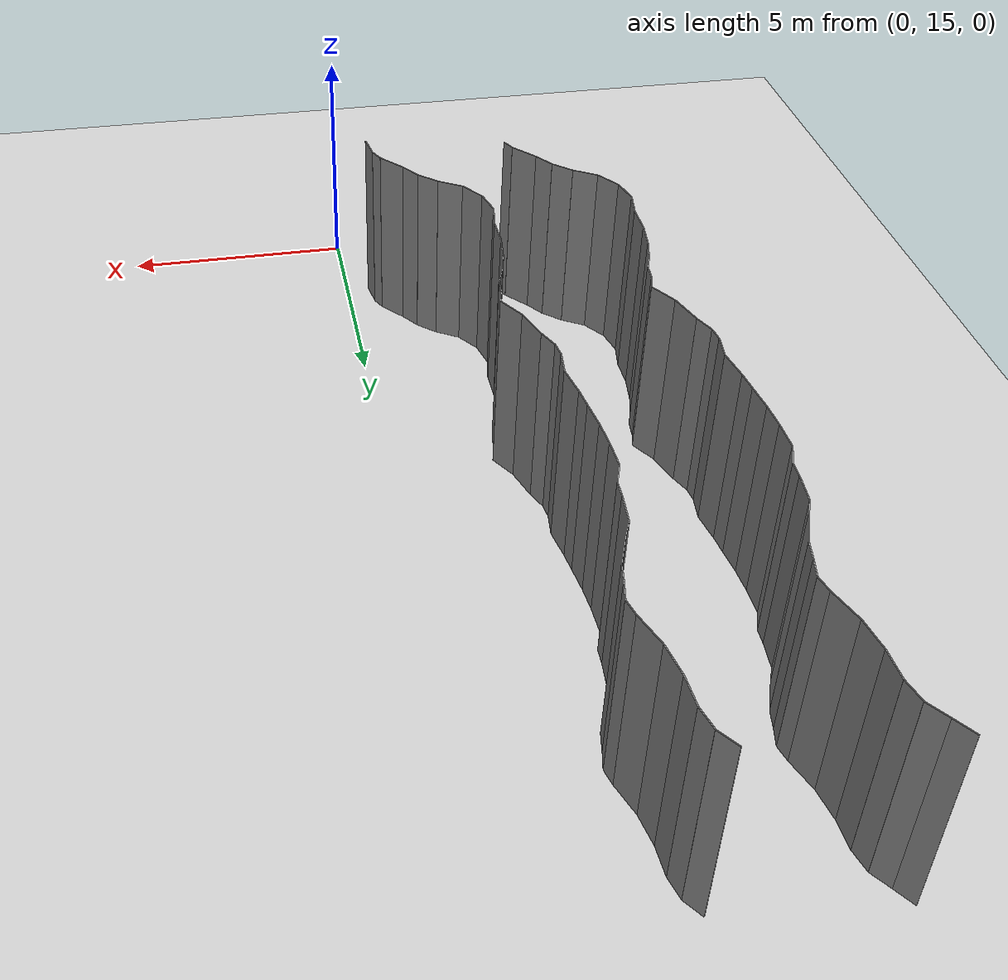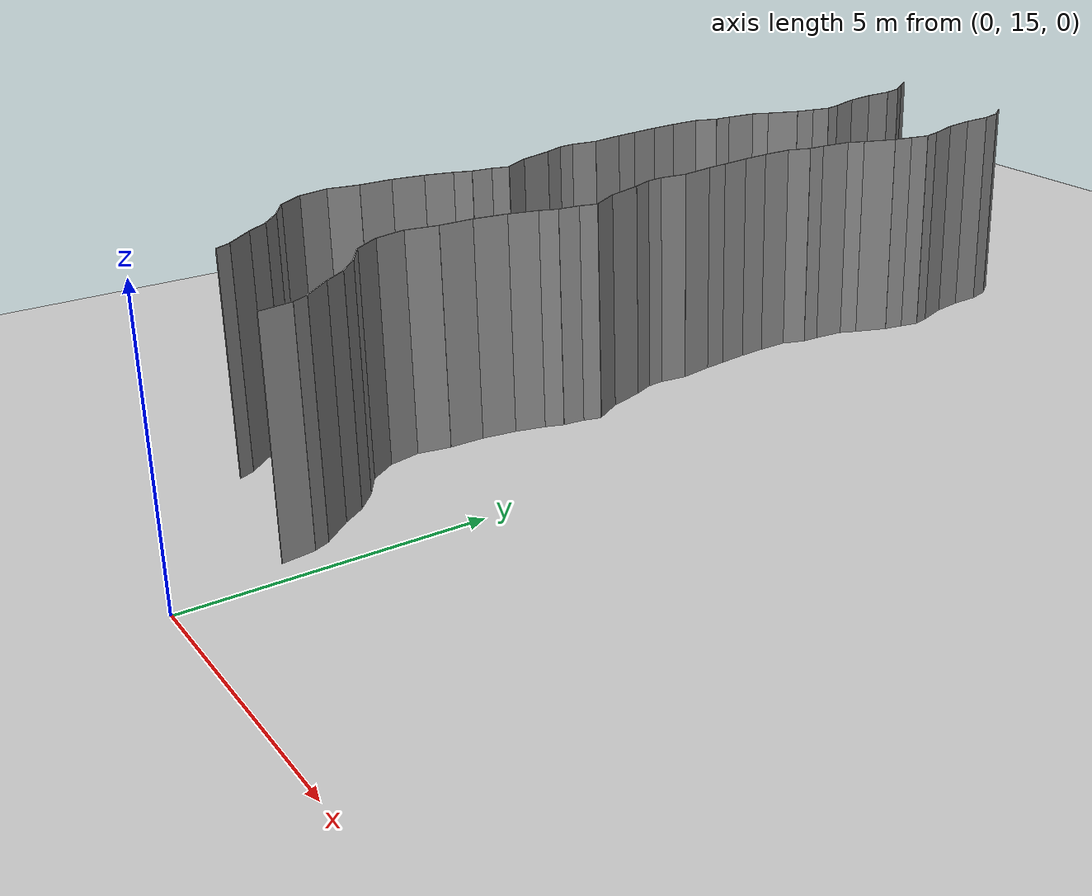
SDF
<sdf version="1.6">
 <world name="default">
  <model name="ground_plane">
   <static>1</static>
   <link name="link">
    <collision name="collision">
     <geometry><plane><normal>0 0 1</normal><size>200 200</size></plane></geometry>
     <surface><friction><ode><mu>100</mu><mu2>50</mu2></ode></friction></surface>
    </collision>
    <visual name="visual">
     <cast_shadows>0</cast_shadows>
     <geometry><plane><normal>0 0 1</normal><size>200 200</size></plane></geometry>
     <material>
      <script><uri>file://media/materials/scripts/gazebo.material</uri><name>Gazebo/Grey</name></script>
     </material>
    </visual>
   </link>
   <pose>0 100 0 0 -0 0</pose>
  </model>
  <model name="wall_73">
   <static>1</static>
   <pose>-0.555920707397 17.1305444143 2 0 0 0.146298872248</pose>
   <link name="link">
    <collision name="collision"><geometry><box><size>0.02 0.571256150958 4</size></box></geometry></collision>
    <visual name="visual">
     <material>
      <script><name>Gazebo/Grey</name><uri>file://media/materials/scripts/gazebo.material</uri></script>
     </material>
     <geometry><box><size>0.02 0.571256150958 4</size></box></geometry>
    </visual>
   </link>
  </model>
  <model name="wall_74">
   <static>1</static>
   <pose>-3.66425128231 17.5491208052 2 0 0 0.455927642203</pose>
   <link name="link">
    <collision name="collision"><geometry><box><size>0.02 0.302943958457 4</size></box></geometry></collision>
    <visual name="visual">
     <material>
      <script><name>Gazebo/Grey</name><uri>file://media/materials/scripts/gazebo.material</uri></script>
     </material>
     <geometry><box><size>0.02 0.302943958457 4</size></box></geometry>
    </visual>
   </link>
  </model>
  <model name="wall_75">
   <static>1</static>
   <pose>-0.664251282315 17.5491208052 2 0 0 0.455927642203</pose>
   <link name="link">
    <collision name="collision"><geometry><box><size>0.02 0.302943958457 4</size></box></geometry></collision>
    <visual name="visual">
     <material>
      <script><name>Gazebo/Grey</name><uri>file://media/materials/scripts/gazebo.material</uri></script>
     </material>
     <geometry><box><size>0.02 0.302943958457 4</size></box></geometry>
    </visual>
   </link>
  </model>
  <model name="wall_76">
   <static>1</static>
   <pose>-3.94526130173 17.932122336 2 0 0 0.714666645023</pose>
   <link name="link">
    <collision name="collision"><geometry><box><size>0.02 0.65403977165 4</size></box></geometry></collision>
    <visual name="visual">
     <material>
      <script><name>Gazebo/Grey</name><uri>file://media/materials/scripts/gazebo.material</uri></script>
     </material>
     <geometry><box><size>0.02 0.65403977165 4</size></box></geometry>
    </visual>
   </link>
  </model>
  <model name="wall_77">
   <static>1</static>
   <pose>-0.945261301727 17.932122336 2 0 0 0.714666645023</pose>
   <link name="link">
    <collision name="collision"><geometry><box><size>0.02 0.65403977165 4</size></box></geometry></collision>
    <visual name="visual">
     <material>
      <script><name>Gazebo/Grey</name><uri>file://media/materials/scripts/gazebo.material</uri></script>
     </material>
     <geometry><box><size>0.02 0.65403977165 4</size></box></geometry>
    </visual>
   </link>
  </model>
  <model name="wall_78">
   <static>1</static>
   <pose>-4.29549473867 18.3744088981 2 0 0 0.608028593425</pose>
   <link name="link">
    <collision name="collision"><geometry><box><size>0.02 0.475853708182 4</size></box></geometry></collision>
    <visual name="visual">
     <material>
      <script><name>Gazebo/Grey</name><uri>file://media/materials/scripts/gazebo.material</uri></script>
     </material>
     <geometry><box><size>0.02 0.475853708182 4</size></box></geometry>
    </visual>
   </link>
  </model>
  <model name="wall_79">
   <static>1</static>
   <pose>-1.29549473867 18.3744088981 2 0 0 0.608028593425</pose>
   <link name="link">
    <collision name="collision"><geometry><box><size>0.02 0.475853708182 4</size></box></geometry></collision>
    <visual name="visual">
     <material>
      <script><name>Gazebo/Grey</name><uri>file://media/materials/scripts/gazebo.material</uri></script>
     </material>
     <geometry><box><size>0.02 0.475853708182 4</size></box></geometry>
    </visual>
   </link>
  </model>
  <model name="wall_80">
   <static>1</static>
   <pose>-4.62259579858 18.7411833052 2 0 0 0.839650843861</pose>
   <link name="link">
    <collision name="collision"><geometry><box><size>0.02 0.513655704942 4</size></box></geometry></collision>
    <visual name="visual">
     <material>
      <script><name>Gazebo/Grey</name><uri>file://media/materials/scripts/gazebo.material</uri></script>
     </material>
     <geometry><box><size>0.02 0.513655704942 4</size></box></geometry>
    </visual>
   </link>
  </model>
  <model name="wall_81">
   <static>1</static>
   <pose>-1.62259579858 18.7411833052 2 0 0 0.839650843861</pose>
   <link name="link">
    <collision name="collision"><geometry><box><size>0.02 0.513655704942 4</size></box></geometry></collision>
    <visual name="visual">
     <material>
      <script><name>Gazebo/Grey</name><uri>file://media/materials/scripts/gazebo.material</uri></script>
     </material>
     <geometry><box><size>0.02 0.513655704942 4</size></box></geometry>
    </visual>
   </link>
  </model>
  <model name="wall_82">
   <static>1</static>
   <pose>-5.0556196747 19.0595482399 2 0 0 1.02500677904</pose>
   <link name="link">
    <collision name="collision"><geometry><box><size>0.02 0.565891277161 4</size></box></geometry></collision>
    <visual name="visual">
     <material>
      <script><name>Gazebo/Grey</name><uri>file://media/materials/scripts/gazebo.material</uri></script>
     </material>
     <geometry><box><size>0.02 0.565891277161 4</size></box></geometry>
    </visual>
   </link>
  </model>
  <model name="wall_83">
   <static>1</static>
   <pose>-2.0556196747 19.0595482399 2 0 0 1.02500677904</pose>
   <link name="link">
    <collision name="collision"><geometry><box><size>0.02 0.565891277161 4</size></box></geometry></collision>
    <visual name="visual">
     <material>
      <script><name>Gazebo/Grey</name><uri>file://media/materials/scripts/gazebo.material</uri></script>
     </material>
     <geometry><box><size>0.02 0.565891277161 4</size></box></geometry>
    </visual>
   </link>
  </model>
  <model name="wall_84">
   <static>1</static>
   <pose>-5.46337011619 19.4442779113 2 0 0 0.609069469858</pose>
   <link name="link">
    <collision name="collision"><geometry><box><size>0.02 0.580005199107 4</size></box></geometry></collision>
    <visual name="visual">
     <material>
      <script><name>Gazebo/Grey</name><uri>file://media/materials/scripts/gazebo.material</uri></script>
     </material>
     <geometry><box><size>0.02 0.580005199107 4</size></box></geometry>
    </visual>
   </link>
  </model>
  <model name="wall_85">
   <static>1</static>
   <pose>-2.46337011619 19.4442779113 2 0 0 0.609069469858</pose>
   <link name="link">
    <collision name="collision"><geometry><box><size>0.02 0.580005199107 4</size></box></geometry></collision>
    <visual name="visual">
     <material>
      <script><name>Gazebo/Grey</name><uri>file://media/materials/scripts/gazebo.material</uri></script>
     </material>
     <geometry><box><size>0.02 0.580005199107 4</size></box></geometry>
    </visual>
   </link>
  </model>
  <model name="wall_86">
   <static>1</static>
   <pose>-5.69353716844 19.963614784 2 0 0 0.224429035056</pose>
   <link name="link">
    <collision name="collision"><geometry><box><size>0.02 0.577446237086 4</size></box></geometry></collision>
    <visual name="visual">
     <material>
      <script><name>Gazebo/Grey</name><uri>file://media/materials/scripts/gazebo.material</uri></script>
     </material>
     <geometry><box><size>0.02 0.577446237086 4</size></box></geometry>
    </visual>
   </link>
  </model>
  <model name="wall_87">
   <static>1</static>
   <pose>-2.69353716844 19.963614784 2 0 0 0.224429035056</pose>
   <link name="link">
    <collision name="collision"><geometry><box><size>0.02 0.577446237086 4</size></box></geometry></collision>
    <visual name="visual">
     <material>
      <script><name>Gazebo/Grey</name><uri>file://media/materials/scripts/gazebo.material</uri></script>
     </material>
     <geometry><box><size>0.02 0.577446237086 4</size></box></geometry>
    </visual>
   </link>
  </model>
  <model name="wall_88">
   <static>1</static>
   <pose>-5.70666971056 20.5378811278 2 0 0 -0.172866234025</pose>
   <link name="link">
    <collision name="collision"><geometry><box><size>0.02 0.59442749651 4</size></box></geometry></collision>
    <visual name="visual">
     <material>
      <script><name>Gazebo/Grey</name><uri>file://media/materials/scripts/gazebo.material</uri></script>
     </material>
     <geometry><box><size>0.02 0.59442749651 4</size></box></geometry>
    </visual>
   </link>
  </model>
  <model name="wall_89">
   <static>1</static>
   <pose>-2.70666971056 20.5378811278 2 0 0 -0.172866234025</pose>
   <link name="link">
    <collision name="collision"><geometry><box><size>0.02 0.59442749651 4</size></box></geometry></collision>
    <visual name="visual">
     <material>
      <script><name>Gazebo/Grey</name><uri>file://media/materials/scripts/gazebo.material</uri></script>
     </material>
     <geometry><box><size>0.02 0.59442749651 4</size></box></geometry>
    </visual>
   </link>
  </model>
  <model name="wall_90">
   <static>1</static>
   <pose>-5.65540623007 21.145656677 2 0 0 -0.000446881931644</pose>
   <link name="link">
    <collision name="collision"><geometry><box><size>0.02 0.629983129248 4</size></box></geometry></collision>
    <visual name="visual">
     <material>
      <script><name>Gazebo/Grey</name><uri>file://media/materials/scripts/gazebo.material</uri></script>
     </material>
     <geometry><box><size>0.02 0.629983129248 4</size></box></geometry>
    </visual>
   </link>
  </model>
  <model name="wall_91">
   <static>1</static>
   <pose>-2.65540623007 21.145656677 2 0 0 -0.000446881931644</pose>
   <link name="link">
    <collision name="collision"><geometry><box><size>0.02 0.629983129248 4</size></box></geometry></collision>
    <visual name="visual">
     <material>
      <script><name>Gazebo/Grey</name><uri>file://media/materials/scripts/gazebo.material</uri></script>
     </material>
     <geometry><box><size>0.02 0.629983129248 4</size></box></geometry>
    </visual>
   </link>
  </model>
  <model name="wall_92">
   <static>1</static>
   <pose>-5.61170813585 21.7670121679 2 0 0 -0.141228601235</pose>
   <link name="link">
    <collision name="collision"><geometry><box><size>0.02 0.618889701267 4</size></box></geometry></collision>
    <visual name="visual">
     <material>
      <script><name>Gazebo/Grey</name><uri>file://media/materials/scripts/gazebo.material</uri></script>
     </material>
     <geometry><box><size>0.02 0.618889701267 4</size></box></geometry>
    </visual>
   </link>
  </model>
  <model name="wall_93">
   <static>1</static>
   <pose>-2.61170813585 21.7670121679 2 0 0 -0.141228601235</pose>
   <link name="link">
    <collision name="collision"><geometry><box><size>0.02 0.618889701267 4</size></box></geometry></collision>
    <visual name="visual">
     <material>
      <script><name>Gazebo/Grey</name><uri>file://media/materials/scripts/gazebo.material</uri></script>
     </material>
     <geometry><box><size>0.02 0.618889701267 4</size></box></geometry>
    </visual>
   </link>
  </model>
  <model name="wall_94">
   <static>1</static>
   <pose>-5.50118831555 22.3365478436 2 0 0 -0.249156949072</pose>
   <link name="link">
    <collision name="collision"><geometry><box><size>0.02 0.543114456665 4</size></box></geometry></collision>
    <visual name="visual">
     <material>
      <script><name>Gazebo/Grey</name><uri>file://media/materials/scripts/gazebo.material</uri></script>
     </material>
     <geometry><box><size>0.02 0.543114456665 4</size></box></geometry>
    </visual>
   </link>
  </model>
  <model name="wall_95">
   <static>1</static>
   <pose>-2.50118831555 22.3365478436 2 0 0 -0.249156949072</pose>
   <link name="link">
    <collision name="collision"><geometry><box><size>0.02 0.543114456665 4</size></box></geometry></collision>
    <visual name="visual">
     <material>
      <script><name>Gazebo/Grey</name><uri>file://media/materials/scripts/gazebo.material</uri></script>
     </material>
     <geometry><box><size>0.02 0.543114456665 4</size></box></geometry>
    </visual>
   </link>
  </model>
  <model name="wall_96">
   <static>1</static>
   <pose>-5.37311862729 22.7590033428 2 0 0 -0.366321503121</pose>
   <link name="link">
    <collision name="collision"><geometry><box><size>0.02 0.34120617003 4</size></box></geometry></collision>
    <visual name="visual">
     <material>
      <script><name>Gazebo/Grey</name><uri>file://media/materials/scripts/gazebo.material</uri></script>
     </material>
     <geometry><box><size>0.02 0.34120617003 4</size></box></geometry>
    </visual>
   </link>
  </model>
  <model name="wall_97">
   <static>1</static>
   <pose>-2.37311862729 22.7590033428 2 0 0 -0.366321503121</pose>
   <link name="link">
    <collision name="collision"><geometry><box><size>0.02 0.34120617003 4</size></box></geometry></collision>
    <visual name="visual">
     <material>
      <script><name>Gazebo/Grey</name><uri>file://media/materials/scripts/gazebo.material</uri></script>
     </material>
     <geometry><box><size>0.02 0.34120617003 4</size></box></geometry>
    </visual>
   </link>
  </model>
  <model name="wall_98">
   <static>1</static>
   <pose>-5.29109400329 23.1139421687 2 0 0 -0.106505174877</pose>
   <link name="link">
    <collision name="collision"><geometry><box><size>0.02 0.393540011699 4</size></box></geometry></collision>
    <visual name="visual">
     <material>
      <script><name>Gazebo/Grey</name><uri>file://media/materials/scripts/gazebo.material</uri></script>
     </material>
     <geometry><box><size>0.02 0.393540011699 4</size></box></geometry>
    </visual>
   </link>
  </model>
  <model name="wall_99">
   <static>1</static>
   <pose>-2.29109400329 23.1139421687 2 0 0 -0.106505174877</pose>
   <link name="link">
    <collision name="collision"><geometry><box><size>0.02 0.393540011699 4</size></box></geometry></collision>
    <visual name="visual">
     <material>
      <script><name>Gazebo/Grey</name><uri>file://media/materials/scripts/gazebo.material</uri></script>
     </material>
     <geometry><box><size>0.02 0.393540011699 4</size></box></geometry>
    </visual>
   </link>
  </model>
  <model name="wall_100">
   <static>1</static>
   <pose>-5.22520594929 23.4656044302 2 0 0 -0.280651585701</pose>
   <link name="link">
    <collision name="collision"><geometry><box><size>0.02 0.32471901155 4</size></box></geometry></collision>
    <visual name="visual">
     <material>
      <script><name>Gazebo/Grey</name><uri>file://media/materials/scripts/gazebo.material</uri></script>
     </material>
     <geometry><box><size>0.02 0.32471901155 4</size></box></geometry>
    </visual>
   </link>
  </model>
  <model name="wall_101">
   <static>1</static>
   <pose>-2.22520594929 23.4656044302 2 0 0 -0.280651585701</pose>
   <link name="link">
    <collision name="collision"><geometry><box><size>0.02 0.32471901155 4</size></box></geometry></collision>
    <visual name="visual">
     <material>
      <script><name>Gazebo/Grey</name><uri>file://media/materials/scripts/gazebo.material</uri></script>
     </material>
     <geometry><box><size>0.02 0.32471901155 4</size></box></geometry>
    </visual>
   </link>
  </model>
  <model name="wall_102">
   <static>1</static>
   <pose>-5.33693062035 23.8769707046 2 0 0 0.550379392382</pose>
   <link name="link">
    <collision name="collision"><geometry><box><size>0.02 0.599205023433 4</size></box></geometry></collision>
    <visual name="visual">
     <material>
      <script><name>Gazebo/Grey</name><uri>file://media/materials/scripts/gazebo.material</uri></script>
     </material>
     <geometry><box><size>0.02 0.599205023433 4</size></box></geometry>
    </visual>
   </link>
  </model>
  <model name="wall_103">
   <static>1</static>
   <pose>-2.33693062035 23.8769707046 2 0 0 0.550379392382</pose>
   <link name="link">
    <collision name="collision"><geometry><box><size>0.02 0.599205023433 4</size></box></geometry></collision>
    <visual name="visual">
     <material>
      <script><name>Gazebo/Grey</name><uri>file://media/materials/scripts/gazebo.material</uri></script>
     </material>
     <geometry><box><size>0.02 0.599205023433 4</size></box></geometry>
    </visual>
   </link>
  </model>
  <model name="wall_104">
   <static>1</static>
   <pose>-5.60020403041 24.4608019462 2 0 0 0.313748990549</pose>
   <link name="link">
    <collision name="collision"><geometry><box><size>0.02 0.690660175364 4</size></box></geometry></collision>
    <visual name="visual">
     <material>
      <script><name>Gazebo/Grey</name><uri>file://media/materials/scripts/gazebo.material</uri></script>
     </material>
     <geometry><box><size>0.02 0.690660175364 4</size></box></geometry>
    </visual>
   </link>
  </model>
  <model name="wall_105">
   <static>1</static>
   <pose>-2.60020403041 24.4608019462 2 0 0 0.313748990549</pose>
   <link name="link">
    <collision name="collision"><geometry><box><size>0.02 0.690660175364 4</size></box></geometry></collision>
    <visual name="visual">
     <material>
      <script><name>Gazebo/Grey</name><uri>file://media/materials/scripts/gazebo.material</uri></script>
     </material>
     <geometry><box><size>0.02 0.690660175364 4</size></box></geometry>
    </visual>
   </link>
  </model>
  <model name="wall_106">
   <static>1</static>
   <pose>-5.79148898967 24.9802949064 2 0 0 0.417387859016</pose>
   <link name="link">
    <collision name="collision"><geometry><box><size>0.02 0.417919547564 4</size></box></geometry></collision>
    <visual name="visual">
     <material>
      <script><name>Gazebo/Grey</name><uri>file://media/materials/scripts/gazebo.material</uri></script>
     </material>
     <geometry><box><size>0.02 0.417919547564 4</size></box></geometry>
    </visual>
   </link>
  </model>
  <model name="wall_107">
   <static>1</static>
   <pose>-2.79148898967 24.9802949064 2 0 0 0.417387859016</pose>
   <link name="link">
    <collision name="collision"><geometry><box><size>0.02 0.417919547564 4</size></box></geometry></collision>
    <visual name="visual">
     <material>
      <script><name>Gazebo/Grey</name><uri>file://media/materials/scripts/gazebo.material</uri></script>
     </material>
     <geometry><box><size>0.02 0.417919547564 4</size></box></geometry>
    </visual>
   </link>
  </model>
  <model name="wall_108">
   <static>1</static>
   <pose>-5.89367379156 25.3234418192 2 0 0 0.114389639792</pose>
   <link name="link">
    <collision name="collision"><geometry><box><size>0.02 0.306253753086 4</size></box></geometry></collision>
    <visual name="visual">
     <material>
      <script><name>Gazebo/Grey</name><uri>file://media/materials/scripts/gazebo.material</uri></script>
     </material>
     <geometry><box><size>0.02 0.306253753086 4</size></box></geometry>
    </visual>
   </link>
  </model>
  <model name="wall_109">
   <static>1</static>
   <pose>-2.89367379156 25.3234418192 2 0 0 0.114389639792</pose>
   <link name="link">
    <collision name="collision"><geometry><box><size>0.02 0.306253753086 4</size></box></geometry></collision>
    <visual name="visual">
     <material>
      <script><name>Gazebo/Grey</name><uri>file://media/materials/scripts/gazebo.material</uri></script>
     </material>
     <geometry><box><size>0.02 0.306253753086 4</size></box></geometry>
    </visual>
   </link>
  </model>
  <model name="wall_110">
   <static>1</static>
   <pose>-5.87882760851 25.7274558221 2 0 0 -0.12762993525</pose>
   <link name="link">
    <collision name="collision"><geometry><box><size>0.02 0.507906869356 4</size></box></geometry></collision>
    <visual name="visual">
     <material>
      <script><name>Gazebo/Grey</name><uri>file://media/materials/scripts/gazebo.material</uri></script>
     </material>
     <geometry><box><size>0.02 0.507906869356 4</size></box></geometry>
    </visual>
   </link>
  </model>
  <model name="wall_111">
   <static>1</static>
   <pose>-2.87882760851 25.7274558221 2 0 0 -0.12762993525</pose>
   <link name="link">
    <collision name="collision"><geometry><box><size>0.02 0.507906869356 4</size></box></geometry></collision>
    <visual name="visual">
     <material>
      <script><name>Gazebo/Grey</name><uri>file://media/materials/scripts/gazebo.material</uri></script>
     </material>
     <geometry><box><size>0.02 0.507906869356 4</size></box></geometry>
    </visual>
   </link>
  </model>
  <model name="wall_112">
   <static>1</static>
   <pose>-5.90052681585 26.2895633309 2 0 0 0.172416403836</pose>
   <link name="link">
    <collision name="collision"><geometry><box><size>0.02 0.6297769391 4</size></box></geometry></collision>
    <visual name="visual">
     <material>
      <script><name>Gazebo/Grey</name><uri>file://media/materials/scripts/gazebo.material</uri></script>
     </material>
     <geometry><box><size>0.02 0.6297769391 4</size></box></geometry>
    </visual>
   </link>
  </model>
  <model name="wall_113">
   <static>1</static>
   <pose>-2.90052681585 26.2895633309 2 0 0 0.172416403836</pose>
   <link name="link">
    <collision name="collision"><geometry><box><size>0.02 0.6297769391 4</size></box></geometry></collision>
    <visual name="visual">
     <material>
      <script><name>Gazebo/Grey</name><uri>file://media/materials/scripts/gazebo.material</uri></script>
     </material>
     <geometry><box><size>0.02 0.6297769391 4</size></box></geometry>
    </visual>
   </link>
  </model>
  <model name="wall_114">
   <static>1</static>
   <pose>-5.97849574459 26.8016932326 2 0 0 0.118043825342</pose>
   <link name="link">
    <collision name="collision"><geometry><box><size>0.02 0.406650433758 4</size></box></geometry></collision>
    <visual name="visual">
     <material>
      <script><name>Gazebo/Grey</name><uri>file://media/materials/scripts/gazebo.material</uri></script>
     </material>
     <geometry><box><size>0.02 0.406650433758 4</size></box></geometry>
    </visual>
   </link>
  </model>
  <model name="wall_115">
   <static>1</static>
   <pose>-2.97849574459 26.8016932326 2 0 0 0.118043825342</pose>
   <link name="link">
    <collision name="collision"><geometry><box><size>0.02 0.406650433758 4</size></box></geometry></collision>
    <visual name="visual">
     <material>
      <script><name>Gazebo/Grey</name><uri>file://media/materials/scripts/gazebo.material</uri></script>
     </material>
     <geometry><box><size>0.02 0.406650433758 4</size></box></geometry>
    </visual>
   </link>
  </model>
  <model name="wall_116">
   <static>1</static>
   <pose>-6.03552701494 27.275342402 2 0 0 0.121159067118</pose>
   <link name="link">
    <collision name="collision"><geometry><box><size>0.02 0.547491362201 4</size></box></geometry></collision>
    <visual name="visual">
     <material>
      <script><name>Gazebo/Grey</name><uri>file://media/materials/scripts/gazebo.material</uri></script>
     </material>
     <geometry><box><size>0.02 0.547491362201 4</size></box></geometry>
    </visual>
   </link>
  </model>
  <model name="wall_117">
   <static>1</static>
   <pose>-3.03552701494 27.275342402 2 0 0 0.121159067118</pose>
   <link name="link">
    <collision name="collision"><geometry><box><size>0.02 0.547491362201 4</size></box></geometry></collision>
    <visual name="visual">
     <material>
      <script><name>Gazebo/Grey</name><uri>file://media/materials/scripts/gazebo.material</uri></script>
     </material>
     <geometry><box><size>0.02 0.547491362201 4</size></box></geometry>
    </visual>
   </link>
  </model>
  <model name="wall_118">
   <static>1</static>
   <pose>-6.0862076031 27.8013589819 2 0 0 0.0690855056143</pose>
   <link name="link">
    <collision name="collision"><geometry><box><size>0.02 0.509771375693 4</size></box></geometry></collision>
    <visual name="visual">
     <material>
      <script><name>Gazebo/Grey</name><uri>file://media/materials/scripts/gazebo.material</uri></script>
     </material>
     <geometry><box><size>0.02 0.509771375693 4</size></box></geometry>
    </visual>
   </link>
  </model>
  <model name="wall_119">
   <static>1</static>
   <pose>-3.0862076031 27.8013589819 2 0 0 0.0690855056143</pose>
   <link name="link">
    <collision name="collision"><geometry><box><size>0.02 0.509771375693 4</size></box></geometry></collision>
    <visual name="visual">
     <material>
      <script><name>Gazebo/Grey</name><uri>file://media/materials/scripts/gazebo.material</uri></script>
     </material>
     <geometry><box><size>0.02 0.509771375693 4</size></box></geometry>
    </visual>
   </link>
  </model>
  <model name="wall_120">
   <static>1</static>
   <pose>-6.10845982241 28.3436747737 2 0 0 0.0161676892945</pose>
   <link name="link">
    <collision name="collision"><geometry><box><size>0.02 0.576151543962 4</size></box></geometry></collision>
    <visual name="visual">
     <material>
      <script><name>Gazebo/Grey</name><uri>file://media/materials/scripts/gazebo.material</uri></script>
     </material>
     <geometry><box><size>0.02 0.576151543962 4</size></box></geometry>
    </visual>
   </link>
  </model>
  <model name="wall_121">
   <static>1</static>
   <pose>-3.10845982241 28.3436747737 2 0 0 0.0161676892945</pose>
   <link name="link">
    <collision name="collision"><geometry><box><size>0.02 0.576151543962 4</size></box></geometry></collision>
    <visual name="visual">
     <material>
      <script><name>Gazebo/Grey</name><uri>file://media/materials/scripts/gazebo.material</uri></script>
     </material>
     <geometry><box><size>0.02 0.576151543962 4</size></box></geometry>
    </visual>
   </link>
  </model>
  <model name="wall_122">
   <static>1</static>
   <pose>-6.03568411453 28.8444698196 2 0 0 -0.349048572905</pose>
   <link name="link">
    <collision name="collision"><geometry><box><size>0.02 0.452819530942 4</size></box></geometry></collision>
    <visual name="visual">
     <material>
      <script><name>Gazebo/Grey</name><uri>file://media/materials/scripts/gazebo.material</uri></script>
     </material>
     <geometry><box><size>0.02 0.452819530942 4</size></box></geometry>
    </visual>
   </link>
  </model>
  <model name="wall_123">
   <static>1</static>
   <pose>-3.03568411453 28.8444698196 2 0 0 -0.349048572905</pose>
   <link name="link">
    <collision name="collision"><geometry><box><size>0.02 0.452819530942 4</size></box></geometry></collision>
    <visual name="visual">
     <material>
      <script><name>Gazebo/Grey</name><uri>file://media/materials/scripts/gazebo.material</uri></script>
     </material>
     <geometry><box><size>0.02 0.452819530942 4</size></box></geometry>
    </visual>
   </link>
  </model>
  <model name="wall_124">
   <static>1</static>
   <pose>-5.95312123863 29.2162375842 2 0 0 -0.0322498313789</pose>
   <link name="link">
    <collision name="collision"><geometry><box><size>0.02 0.318187132958 4</size></box></geometry></collision>
    <visual name="visual">
     <material>
      <script><name>Gazebo/Grey</name><uri>file://media/materials/scripts/gazebo.material</uri></script>
     </material>
     <geometry><box><size>0.02 0.318187132958 4</size></box></geometry>
    </visual>
   </link>
  </model>
  <model name="wall_125">
   <static>1</static>
   <pose>-2.95312123863 29.2162375842 2 0 0 -0.0322498313789</pose>
   <link name="link">
    <collision name="collision"><geometry><box><size>0.02 0.318187132958 4</size></box></geometry></collision>
    <visual name="visual">
     <material>
      <script><name>Gazebo/Grey</name><uri>file://media/materials/scripts/gazebo.material</uri></script>
     </material>
     <geometry><box><size>0.02 0.318187132958 4</size></box></geometry>
    </visual>
   </link>
  </model>
  <model name="wall_126">
   <static>1</static>
   <pose>-5.91965644442 29.6712071071 2 0 0 -0.0954486026694</pose>
   <link name="link">
    <collision name="collision"><geometry><box><size>0.02 0.594623949804 4</size></box></geometry></collision>
    <visual name="visual">
     <material>
      <script><name>Gazebo/Grey</name><uri>file://media/materials/scripts/gazebo.material</uri></script>
     </material>
     <geometry><box><size>0.02 0.594623949804 4</size></box></geometry>
    </visual>
   </link>
  </model>
  <model name="wall_127">
   <static>1</static>
   <pose>-2.91965644442 29.6712071071 2 0 0 -0.0954486026694</pose>
   <link name="link">
    <collision name="collision"><geometry><box><size>0.02 0.594623949804 4</size></box></geometry></collision>
    <visual name="visual">
     <material>
      <script><name>Gazebo/Grey</name><uri>file://media/materials/scripts/gazebo.material</uri></script>
     </material>
     <geometry><box><size>0.02 0.594623949804 4</size></box></geometry>
    </visual>
   </link>
  </model>
  <model name="wall_128">
   <static>1</static>
   <pose>-5.82241273866 30.1196685041 2 0 0 -0.424393560795</pose>
   <link name="link">
    <collision name="collision"><geometry><box><size>0.02 0.334696852159 4</size></box></geometry></collision>
    <visual name="visual">
     <material>
      <script><name>Gazebo/Grey</name><uri>file://media/materials/scripts/gazebo.material</uri></script>
     </material>
     <geometry><box><size>0.02 0.334696852159 4</size></box></geometry>
    </visual>
   </link>
  </model>
  <model name="wall_129">
   <static>1</static>
   <pose>-2.82241273866 30.1196685041 2 0 0 -0.424393560795</pose>
   <link name="link">
    <collision name="collision"><geometry><box><size>0.02 0.334696852159 4</size></box></geometry></collision>
    <visual name="visual">
     <material>
      <script><name>Gazebo/Grey</name><uri>file://media/materials/scripts/gazebo.material</uri></script>
     </material>
     <geometry><box><size>0.02 0.334696852159 4</size></box></geometry>
    </visual>
   </link>
  </model>
  <model name="wall_130">
   <static>1</static>
   <pose>-5.63332116751 30.5750575308 2 0 0 -0.3777376414</pose>
   <link name="link">
    <collision name="collision"><geometry><box><size>0.02 0.651717807475 4</size></box></geometry></collision>
    <visual name="visual">
     <material>
      <script><name>Gazebo/Grey</name><uri>file://media/materials/scripts/gazebo.material</uri></script>
     </material>
     <geometry><box><size>0.02 0.651717807475 4</size></box></geometry>
    </visual>
   </link>
  </model>
  <model name="wall_131">
   <static>1</static>
   <pose>-2.63332116751 30.5750575308 2 0 0 -0.3777376414</pose>
   <link name="link">
    <collision name="collision"><geometry><box><size>0.02 0.651717807475 4</size></box></geometry></collision>
    <visual name="visual">
     <material>
      <script><name>Gazebo/Grey</name><uri>file://media/materials/scripts/gazebo.material</uri></script>
     </material>
     <geometry><box><size>0.02 0.651717807475 4</size></box></geometry>
    </visual>
   </link>
  </model>
  <model name="wall_132">
   <static>1</static>
   <pose>-5.47716509824 31.064253534 2 0 0 -0.190735976925</pose>
   <link name="link">
    <collision name="collision"><geometry><box><size>0.02 0.379501655778 4</size></box></geometry></collision>
    <visual name="visual">
     <material>
      <script><name>Gazebo/Grey</name><uri>file://media/materials/scripts/gazebo.material</uri></script>
     </material>
     <geometry><box><size>0.02 0.379501655778 4</size></box></geometry>
    </visual>
   </link>
  </model>
  <model name="wall_133">
   <static>1</static>
   <pose>-2.47716509824 31.064253534 2 0 0 -0.190735976925</pose>
   <link name="link">
    <collision name="collision"><geometry><box><size>0.02 0.379501655778 4</size></box></geometry></collision>
    <visual name="visual">
     <material>
      <script><name>Gazebo/Grey</name><uri>file://media/materials/scripts/gazebo.material</uri></script>
     </material>
     <geometry><box><size>0.02 0.379501655778 4</size></box></geometry>
    </visual>
   </link>
  </model>
  <model name="wall_134">
   <static>1</static>
   <pose>-5.40033477811 31.4322521844 2 0 0 -0.221194175999</pose>
   <link name="link">
    <collision name="collision"><geometry><box><size>0.02 0.372452289825 4</size></box></geometry></collision>
    <visual name="visual">
     <material>
      <script><name>Gazebo/Grey</name><uri>file://media/materials/scripts/gazebo.material</uri></script>
     </material>
     <geometry><box><size>0.02 0.372452289825 4</size></box></geometry>
    </visual>
   </link>
  </model>
  <model name="wall_135">
   <static>1</static>
   <pose>-2.40033477811 31.4322521844 2 0 0 -0.221194175999</pose>
   <link name="link">
    <collision name="collision"><geometry><box><size>0.02 0.372452289825 4</size></box></geometry></collision>
    <visual name="visual">
     <material>
      <script><name>Gazebo/Grey</name><uri>file://media/materials/scripts/gazebo.material</uri></script>
     </material>
     <geometry><box><size>0.02 0.372452289825 4</size></box></geometry>
    </visual>
   </link>
  </model>
  <model name="wall_136">
   <static>1</static>
   <pose>-5.39881949413 31.7711207234 2 0 0 0.245259356867</pose>
   <link name="link">
    <collision name="collision"><geometry><box><size>0.02 0.324056758473 4</size></box></geometry></collision>
    <visual name="visual">
     <material>
      <script><name>Gazebo/Grey</name><uri>file://media/materials/scripts/gazebo.material</uri></script>
     </material>
     <geometry><box><size>0.02 0.324056758473 4</size></box></geometry>
    </visual>
   </link>
  </model>
  <model name="wall_137">
   <static>1</static>
   <pose>-2.39881949413 31.7711207234 2 0 0 0.245259356867</pose>
   <link name="link">
    <collision name="collision"><geometry><box><size>0.02 0.324056758473 4</size></box></geometry></collision>
    <visual name="visual">
     <material>
      <script><name>Gazebo/Grey</name><uri>file://media/materials/scripts/gazebo.material</uri></script>
     </material>
     <geometry><box><size>0.02 0.324056758473 4</size></box></geometry>
    </visual>
   </link>
  </model>
  <model name="wall_138">
   <static>1</static>
   <pose>-5.55034575699 32.2383458721 2 0 0 0.347176672755</pose>
   <link name="link">
    <collision name="collision"><geometry><box><size>0.02 0.659434951818 4</size></box></geometry></collision>
    <visual name="visual">
     <material>
      <script><name>Gazebo/Grey</name><uri>file://media/materials/scripts/gazebo.material</uri></script>
     </material>
     <geometry><box><size>0.02 0.659434951818 4</size></box></geometry>
    </visual>
   </link>
  </model>
  <model name="wall_139">
   <static>1</static>
   <pose>-2.55034575699 32.2383458721 2 0 0 0.347176672755</pose>
   <link name="link">
    <collision name="collision"><geometry><box><size>0.02 0.659434951818 4</size></box></geometry></collision>
    <visual name="visual">
     <material>
      <script><name>Gazebo/Grey</name><uri>file://media/materials/scripts/gazebo.material</uri></script>
     </material>
     <geometry><box><size>0.02 0.659434951818 4</size></box></geometry>
    </visual>
   </link>
  </model>
  <model name="wall_140">
   <static>1</static>
   <pose>-5.71558443061 32.8510741002 2 0 0 0.173517235011</pose>
   <link name="link">
    <collision name="collision"><geometry><box><size>0.02 0.614594301865 4</size></box></geometry></collision>
    <visual name="visual">
     <material>
      <script><name>Gazebo/Grey</name><uri>file://media/materials/scripts/gazebo.material</uri></script>
     </material>
     <geometry><box><size>0.02 0.614594301865 4</size></box></geometry>
    </visual>
   </link>
  </model>
  <model name="wall_141">
   <static>1</static>
   <pose>-2.71558443061 32.8510741002 2 0 0 0.173517235011</pose>
   <link name="link">
    <collision name="collision"><geometry><box><size>0.02 0.614594301865 4</size></box></geometry></collision>
    <visual name="visual">
     <material>
      <script><name>Gazebo/Grey</name><uri>file://media/materials/scripts/gazebo.material</uri></script>
     </material>
     <geometry><box><size>0.02 0.614594301865 4</size></box></geometry>
    </visual>
   </link>
  </model>
  <model name="wall_142">
   <static>1</static>
   <pose>-5.77828587995 33.4397850847 2 0 0 0.0337155689353</pose>
   <link name="link">
    <collision name="collision"><geometry><box><size>0.02 0.572381943762 4</size></box></geometry></collision>
    <visual name="visual">
     <material>
      <script><name>Gazebo/Grey</name><uri>file://media/materials/scripts/gazebo.material</uri></script>
     </material>
     <geometry><box><size>0.02 0.572381943762 4</size></box></geometry>
    </visual>
   </link>
  </model>
  <model name="wall_143">
   <static>1</static>
   <pose>-2.77828587995 33.4397850847 2 0 0 0.0337155689353</pose>
   <link name="link">
    <collision name="collision"><geometry><box><size>0.02 0.572381943762 4</size></box></geometry></collision>
    <visual name="visual">
     <material>
      <script><name>Gazebo/Grey</name><uri>file://media/materials/scripts/gazebo.material</uri></script>
     </material>
     <geometry><box><size>0.02 0.572381943762 4</size></box></geometry>
    </visual>
   </link>
  </model>
  <model name="wall_144">
   <static>1</static>
   <pose>-5.84218747496 33.9333319137 2 0 0 0.255719534314</pose>
   <link name="link">
    <collision name="collision"><geometry><box><size>0.02 0.428987002203 4</size></box></geometry></collision>
    <visual name="visual">
     <material>
      <script><name>Gazebo/Grey</name><uri>file://media/materials/scripts/gazebo.material</uri></script>
     </material>
     <geometry><box><size>0.02 0.428987002203 4</size></box></geometry>
    </visual>
   </link>
  </model>
  <model name="wall_145">
   <static>1</static>
   <pose>-2.84218747496 33.9333319137 2 0 0 0.255719534314</pose>
   <link name="link">
    <collision name="collision"><geometry><box><size>0.02 0.428987002203 4</size></box></geometry></collision>
    <visual name="visual">
     <material>
      <script><name>Gazebo/Grey</name><uri>file://media/materials/scripts/gazebo.material</uri></script>
     </material>
     <geometry><box><size>0.02 0.428987002203 4</size></box></geometry>
    </visual>
   </link>
  </model>
  <model name="wall_146">
   <static>1</static>
   <pose>-6.01929213975 34.3067427474 2 0 0 0.637420830711</pose>
   <link name="link">
    <collision name="collision"><geometry><box><size>0.02 0.412855758857 4</size></box></geometry></collision>
    <visual name="visual">
     <material>
      <script><name>Gazebo/Grey</name><uri>file://media/materials/scripts/gazebo.material</uri></script>
     </material>
     <geometry><box><size>0.02 0.412855758857 4</size></box></geometry>
    </visual>
   </link>
  </model>
  <model name="wall_147">
   <static>1</static>
   <pose>-3.01929213975 34.3067427474 2 0 0 0.637420830711</pose>
   <link name="link">
    <collision name="collision"><geometry><box><size>0.02 0.412855758857 4</size></box></geometry></collision>
    <visual name="visual">
     <material>
      <script><name>Gazebo/Grey</name><uri>file://media/materials/scripts/gazebo.material</uri></script>
     </material>
     <geometry><box><size>0.02 0.412855758857 4</size></box></geometry>
    </visual>
   </link>
  </model>
  <model name="wall_148">
   <static>1</static>
   <pose>-6.26137725388 34.6395914228 2 0 0 0.620171144101</pose>
   <link name="link">
    <collision name="collision"><geometry><box><size>0.02 0.410323552296 4</size></box></geometry></collision>
    <visual name="visual">
     <material>
      <script><name>Gazebo/Grey</name><uri>file://media/materials/scripts/gazebo.material</uri></script>
     </material>
     <geometry><box><size>0.02 0.410323552296 4</size></box></geometry>
    </visual>
   </link>
  </model>
 </world>
</sdf>
